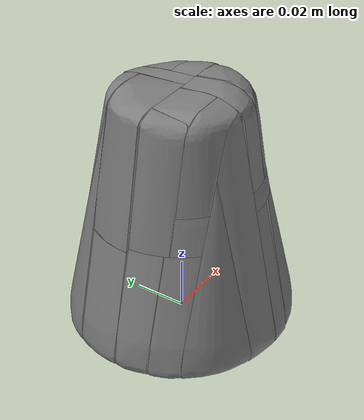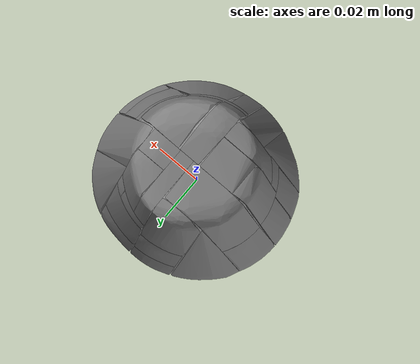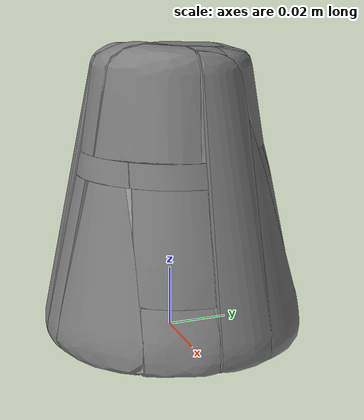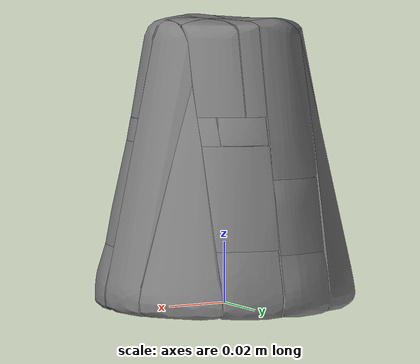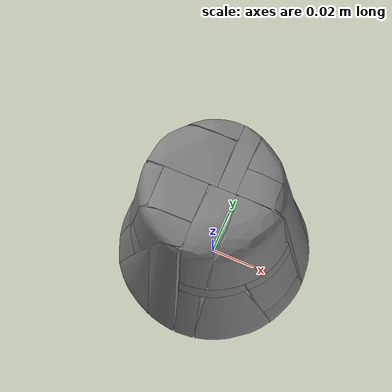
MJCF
<mujoco model="white_cup">
  <asset>
    <material name="white_cup_mat" rgba="0.6 0.6 0.6 1" specular="0.3" shininess="0.1"/>
    <mesh name="white_cup_vis" file="white_cup_libero.obj" scale="1 1 1"/>
    <mesh name="white_cup_col_0" file="white_cup_col_0.obj" scale="1 1 1"/>
    <mesh name="white_cup_col_1" file="white_cup_col_1.obj" scale="1 1 1"/>
    <mesh name="white_cup_col_2" file="white_cup_col_2.obj" scale="1 1 1"/>
    <mesh name="white_cup_col_3" file="white_cup_col_3.obj" scale="1 1 1"/>
    <mesh name="white_cup_col_4" file="white_cup_col_4.obj" scale="1 1 1"/>
    <mesh name="white_cup_col_5" file="white_cup_col_5.obj" scale="1 1 1"/>
    <mesh name="white_cup_col_6" file="white_cup_col_6.obj" scale="1 1 1"/>
    <mesh name="white_cup_col_7" file="white_cup_col_7.obj" scale="1 1 1"/>
    <mesh name="white_cup_col_8" file="white_cup_col_8.obj" scale="1 1 1"/>
    <mesh name="white_cup_col_9" file="white_cup_col_9.obj" scale="1 1 1"/>
    <mesh name="white_cup_col_10" file="white_cup_col_10.obj" scale="1 1 1"/>
    <mesh name="white_cup_col_11" file="white_cup_col_11.obj" scale="1 1 1"/>
    <mesh name="white_cup_col_12" file="white_cup_col_12.obj" scale="1 1 1"/>
    <mesh name="white_cup_col_13" file="white_cup_col_13.obj" scale="1 1 1"/>
    <mesh name="white_cup_col_14" file="white_cup_col_14.obj" scale="1 1 1"/>
    <mesh name="white_cup_col_15" file="white_cup_col_15.obj" scale="1 1 1"/>
    <mesh name="white_cup_col_16" file="white_cup_col_16.obj" scale="1 1 1"/>
    <mesh name="white_cup_col_17" file="white_cup_col_17.obj" scale="1 1 1"/>
    <mesh name="white_cup_col_18" file="white_cup_col_18.obj" scale="1 1 1"/>
    <mesh name="white_cup_col_19" file="white_cup_col_19.obj" scale="1 1 1"/>
    <mesh name="white_cup_col_20" file="white_cup_col_20.obj" scale="1 1 1"/>
    <mesh name="white_cup_col_21" file="white_cup_col_21.obj" scale="1 1 1"/>
    <mesh name="white_cup_col_22" file="white_cup_col_22.obj" scale="1 1 1"/>
    <mesh name="white_cup_col_23" file="white_cup_col_23.obj" scale="1 1 1"/>
    <mesh name="white_cup_col_24" file="white_cup_col_24.obj" scale="1 1 1"/>
    <mesh name="white_cup_col_25" file="white_cup_col_25.obj" scale="1 1 1"/>
    <mesh name="white_cup_col_26" file="white_cup_col_26.obj" scale="1 1 1"/>
    <mesh name="white_cup_col_27" file="white_cup_col_27.obj" scale="1 1 1"/>
    <mesh name="white_cup_col_28" file="white_cup_col_28.obj" scale="1 1 1"/>
    <mesh name="white_cup_col_29" file="white_cup_col_29.obj" scale="1 1 1"/>
    <mesh name="white_cup_col_30" file="white_cup_col_30.obj" scale="1 1 1"/>
    <mesh name="white_cup_col_31" file="white_cup_col_31.obj" scale="1 1 1"/>
  </asset>
  <worldbody>
    <body>
      <body name="object">
        <geom type="mesh" mesh="white_cup_vis" material="white_cup_mat" group="1" contype="0" conaffinity="0"/>
        <geom type="mesh" mesh="white_cup_col_0" group="0" density="100" friction="0.95 0.3 0.1" solimp="0.998 0.998 0.001" solref="0.001 1"/>
        <geom type="mesh" mesh="white_cup_col_1" group="0" density="100" friction="0.95 0.3 0.1" solimp="0.998 0.998 0.001" solref="0.001 1"/>
        <geom type="mesh" mesh="white_cup_col_2" group="0" density="100" friction="0.95 0.3 0.1" solimp="0.998 0.998 0.001" solref="0.001 1"/>
        <geom type="mesh" mesh="white_cup_col_3" group="0" density="100" friction="0.95 0.3 0.1" solimp="0.998 0.998 0.001" solref="0.001 1"/>
        <geom type="mesh" mesh="white_cup_col_4" group="0" density="100" friction="0.95 0.3 0.1" solimp="0.998 0.998 0.001" solref="0.001 1"/>
        <geom type="mesh" mesh="white_cup_col_5" group="0" density="100" friction="0.95 0.3 0.1" solimp="0.998 0.998 0.001" solref="0.001 1"/>
        <geom type="mesh" mesh="white_cup_col_6" group="0" density="100" friction="0.95 0.3 0.1" solimp="0.998 0.998 0.001" solref="0.001 1"/>
        <geom type="mesh" mesh="white_cup_col_7" group="0" density="100" friction="0.95 0.3 0.1" solimp="0.998 0.998 0.001" solref="0.001 1"/>
        <geom type="mesh" mesh="white_cup_col_8" group="0" density="100" friction="0.95 0.3 0.1" solimp="0.998 0.998 0.001" solref="0.001 1"/>
        <geom type="mesh" mesh="white_cup_col_9" group="0" density="100" friction="0.95 0.3 0.1" solimp="0.998 0.998 0.001" solref="0.001 1"/>
        <geom type="mesh" mesh="white_cup_col_10" group="0" density="100" friction="0.95 0.3 0.1" solimp="0.998 0.998 0.001" solref="0.001 1"/>
        <geom type="mesh" mesh="white_cup_col_11" group="0" density="100" friction="0.95 0.3 0.1" solimp="0.998 0.998 0.001" solref="0.001 1"/>
        <geom type="mesh" mesh="white_cup_col_12" group="0" density="100" friction="0.95 0.3 0.1" solimp="0.998 0.998 0.001" solref="0.001 1"/>
        <geom type="mesh" mesh="white_cup_col_13" group="0" density="100" friction="0.95 0.3 0.1" solimp="0.998 0.998 0.001" solref="0.001 1"/>
        <geom type="mesh" mesh="white_cup_col_14" group="0" density="100" friction="0.95 0.3 0.1" solimp="0.998 0.998 0.001" solref="0.001 1"/>
        <geom type="mesh" mesh="white_cup_col_15" group="0" density="100" friction="0.95 0.3 0.1" solimp="0.998 0.998 0.001" solref="0.001 1"/>
        <geom type="mesh" mesh="white_cup_col_16" group="0" density="100" friction="0.95 0.3 0.1" solimp="0.998 0.998 0.001" solref="0.001 1"/>
        <geom type="mesh" mesh="white_cup_col_17" group="0" density="100" friction="0.95 0.3 0.1" solimp="0.998 0.998 0.001" solref="0.001 1"/>
        <geom type="mesh" mesh="white_cup_col_18" group="0" density="100" friction="0.95 0.3 0.1" solimp="0.998 0.998 0.001" solref="0.001 1"/>
        <geom type="mesh" mesh="white_cup_col_19" group="0" density="100" friction="0.95 0.3 0.1" solimp="0.998 0.998 0.001" solref="0.001 1"/>
        <geom type="mesh" mesh="white_cup_col_20" group="0" density="100" friction="0.95 0.3 0.1" solimp="0.998 0.998 0.001" solref="0.001 1"/>
        <geom type="mesh" mesh="white_cup_col_21" group="0" density="100" friction="0.95 0.3 0.1" solimp="0.998 0.998 0.001" solref="0.001 1"/>
        <geom type="mesh" mesh="white_cup_col_22" group="0" density="100" friction="0.95 0.3 0.1" solimp="0.998 0.998 0.001" solref="0.001 1"/>
        <geom type="mesh" mesh="white_cup_col_23" group="0" density="100" friction="0.95 0.3 0.1" solimp="0.998 0.998 0.001" solref="0.001 1"/>
        <geom type="mesh" mesh="white_cup_col_24" group="0" density="100" friction="0.95 0.3 0.1" solimp="0.998 0.998 0.001" solref="0.001 1"/>
        <geom type="mesh" mesh="white_cup_col_25" group="0" density="100" friction="0.95 0.3 0.1" solimp="0.998 0.998 0.001" solref="0.001 1"/>
        <geom type="mesh" mesh="white_cup_col_26" group="0" density="100" friction="0.95 0.3 0.1" solimp="0.998 0.998 0.001" solref="0.001 1"/>
        <geom type="mesh" mesh="white_cup_col_27" group="0" density="100" friction="0.95 0.3 0.1" solimp="0.998 0.998 0.001" solref="0.001 1"/>
        <geom type="mesh" mesh="white_cup_col_28" group="0" density="100" friction="0.95 0.3 0.1" solimp="0.998 0.998 0.001" solref="0.001 1"/>
        <geom type="mesh" mesh="white_cup_col_29" group="0" density="100" friction="0.95 0.3 0.1" solimp="0.998 0.998 0.001" solref="0.001 1"/>
        <geom type="mesh" mesh="white_cup_col_30" group="0" density="100" friction="0.95 0.3 0.1" solimp="0.998 0.998 0.001" solref="0.001 1"/>
        <geom type="mesh" mesh="white_cup_col_31" group="0" density="100" friction="0.95 0.3 0.1" solimp="0.998 0.998 0.001" solref="0.001 1"/>
      </body>
      <site rgba="0 0 0 0" size="0.005" pos="0 0 0" name="bottom_site"/>
      <site rgba="0 0 0 0" size="0.005" pos="0 0 0.09391" name="top_site"/>
      <site rgba="0 0 0 0" size="0.005" pos="0.04251 0 0" name="horizontal_radius_site"/>
      <site type="box" rgba="0 0 0 0" pos="0 0 0.05165" size="0.02550 0.02445 0.02817" name="contain_region"/>
    </body>
  </worldbody>
</mujoco>
